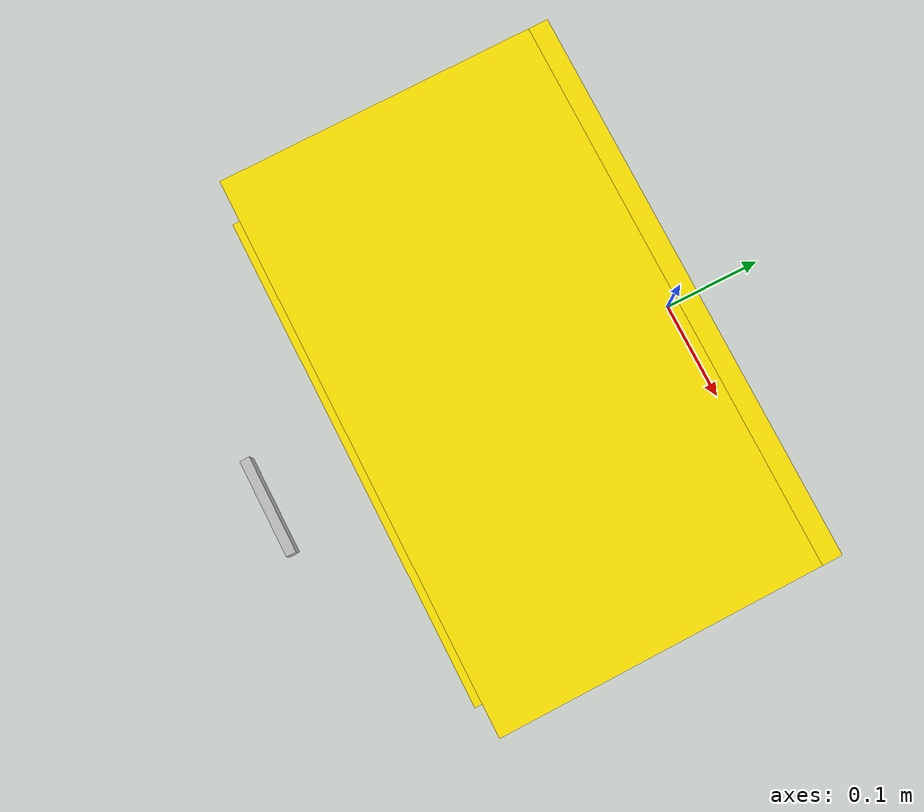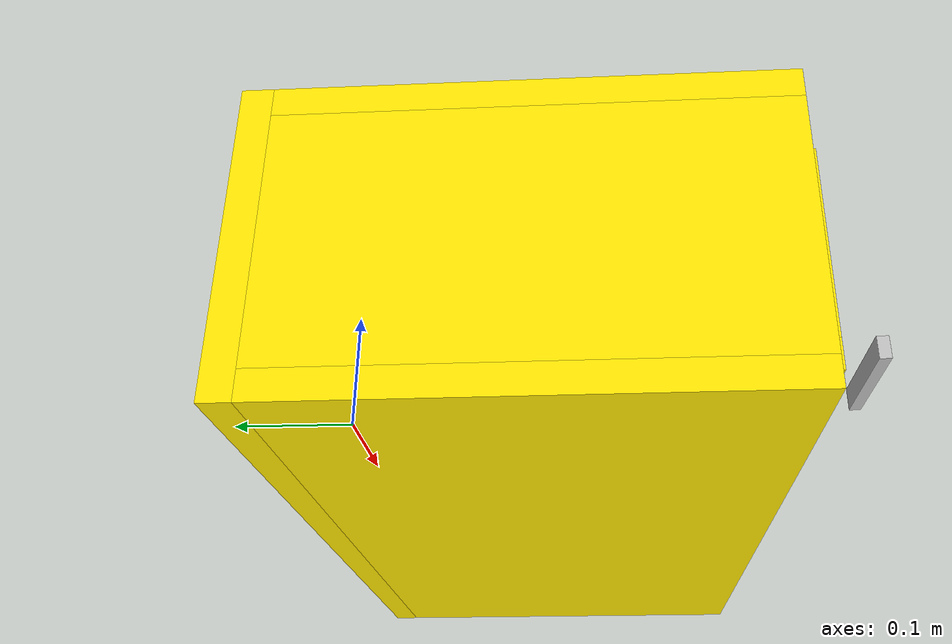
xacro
<?xml version="1.0"?>
<robot xmlns:xacro="http://www.ros.org/wiki/xacro" name="drawer">
    <xacro:property name="thickness" value="0.02"/>
    <xacro:property name="x_position" value="0"/>
    <xacro:property name="y_position" value="0"/>
    <xacro:property name="z_position" value="0"/>

    <xacro:include filename="$(find hyrobot)/urdf/objects_xacro/calc_inertial.xacro"/>

    <material name="yellow">
        <color rgba="1.0 0.9 0.0 1.0"/>
    </material>

    <xacro:macro name="open_cuboid" params="prefix length width height mass">
        <link name="${prefix}_drawer_base">
            <xacro:box_inertial m="${mass}" x="${length}" y="${width}" z="${thickness}"/>
            <visual>
                <origin xyz="0.0 0.0 0.0" rpy="0.0 0.0 0.0"/>
                <geometry>
                    <mesh filename="../../meshes/drawer/${prefix}_drawer_base_visual.obj" scale="1 1 1"/>
                </geometry>
                <material name="yellow"/>
            </visual>
            <collision>
                <origin xyz="0.0 0.0 0.0" rpy="0.0 0.0 0.0"/>
                <geometry>
                    <mesh filename="../../meshes/drawer/${prefix}_drawer_base_visual.obj" scale="1 1 1"/>
                </geometry>
                <surface>
                    <friction>
                        <ode>
                            <mu>0.5</mu>
                        </ode>
                    </friction>
                </surface>
            </collision>
        </link>

        <!--drawer_front-->
        <link name="${prefix}_drawer_front">
            <xacro:box_inertial m="${mass}" x="${thickness}" y="${width}" z="${height-thickness}"/>
            <visual>
                <origin xyz="0.0 0.0 0.0" rpy="0.0 0.0 0.0"/>
                <geometry>
                    <mesh filename="../../meshes/drawer/${prefix}_drawer_front_visual.obj" scale="1 1 1"/>
                </geometry>
                <material name="yellow"/>
            </visual>
            <collision>
                <origin xyz="0.0 0.0 0.0" rpy="0.0 0.0 0.0"/>
                <geometry>
                    <mesh filename="../../meshes/drawer/${prefix}_drawer_front_visual.obj" scale="1 1 1"/>
                </geometry>
            </collision>
        </link>
        <joint name="${prefix}_front2base" type="fixed">
            <origin xyz="${length/2 - thickness/2} ${height/2} 0.0" rpy="0.0 0.0 0.0"/>
            <parent link="${prefix}_drawer_base"/>
            <child link="${prefix}_drawer_front"/>
        </joint>
        <!--drawer_back-->
        <link name="${prefix}_drawer_back">
            <xacro:box_inertial m="${mass}" x="${thickness}" y="${width}" z="${height-thickness}"/>
            <visual>
                <origin xyz="0.0 0.0 0.0" rpy="0.0 0.0 0.0"/>
                <geometry>
                    <mesh filename="../../meshes/drawer/${prefix}_drawer_back_visual.obj" scale="1 1 1"/>
                </geometry>
                <material name="yellow"/>
            </visual>
            <collision>
                <origin xyz="0.0 0.0 0.0" rpy="0.0 0.0 0.0"/>
                <geometry>
                    <mesh filename="../../meshes/drawer/${prefix}_drawer_back_visual.obj" scale="1 1 1"/>
                </geometry>
            </collision>
        </link>
        <joint name="${prefix}_back2base" type="fixed">
            <origin xyz="${-length/2 + thickness/2} ${height/2} 0.0" rpy="0.0 0.0 0.0"/>
            <parent link="${prefix}_drawer_base"/>
            <child link="${prefix}_drawer_back"/>
        </joint>
        <!--drawer_left-->
        <link name="${prefix}_drawer_left">
            <xacro:box_inertial m="${mass}" x="${length - 2*thickness}" y="${thickness}" z="${height-thickness}"/>
            <visual>
                <origin xyz="0.0 0.0 0.0" rpy="0.0 0.0 0.0"/>
                <geometry>
                    <mesh filename="../../meshes/drawer/${prefix}_drawer_left_visual.obj" scale="1 1 1"/>
                </geometry>
                <material name="yellow"/>
            </visual>
            <collision>
                <origin xyz="0.0 0.0 0.0" rpy="0.0 0.0 0.0"/>
                <geometry>
                    <mesh filename="../../meshes/drawer/${prefix}_drawer_left_visual.obj" scale="1 1 1"/>
                </geometry>
            </collision>
        </link>

        <joint name="${prefix}_left2base" type="fixed">
            <origin xyz="0.0 ${height/2} ${-width/2 + thickness/2}" rpy="0.0 0.0 0.0"/>
            <parent link="${prefix}_drawer_base"/>
            <child link="${prefix}_drawer_left"/>
        </joint>

        <!--drawer_right-->
        <link name="${prefix}_drawer_right">
            <xacro:box_inertial m="${mass}" x="${length - 2*thickness}" y="${thickness}" z="${height-thickness}"/>
            <visual>
                <origin xyz="0.0 0.0 0.0" rpy="0.0 0.0 0.0"/>
                <geometry>
                    <mesh filename="../../meshes/drawer/${prefix}_drawer_right_visual.obj" scale="1 1 1"/>
                </geometry>
                <material name="yellow"/>
            </visual>
            <collision>
                <origin xyz="0.0 0.0 0.0" rpy="0.0 0.0 0.0"/>
                <geometry>
                    <mesh filename="../../meshes/drawer/${prefix}_drawer_right_visual.obj" scale="1 1 1"/>
                </geometry>
            </collision>
        </link>

        <joint name="${prefix}_right2base" type="fixed">
            <origin xyz="0.0 ${height/2} ${width/2 - thickness/2}" rpy="0.0 0.0 0.0"/>
            <parent link="${prefix}_drawer_base"/>
            <child link="${prefix}_drawer_right"/>
        </joint>
    </xacro:macro>

    <xacro:macro name="add_drawer" params="prefix drawer_height drawer_width drawer_length drawer_handle">
        <xacro:open_cuboid prefix="${prefix}_in" length="${drawer_length}" width="${drawer_width}" height="${drawer_height}" mass="1"/>
        <xacro:open_cuboid prefix="${prefix}_out" length="${drawer_height + thickness * 3}" width="${drawer_width + thickness * 3}" height="${drawer_length + thickness * 2}" mass="100"/>
        <joint name="${prefix}_in2out" type="prismatic">
            <origin xyz="${drawer_height/2 - thickness/4} ${drawer_length/2+thickness*2} 0.0" rpy="0.0 0.0 ${pi/2}"/>
            <parent link="${prefix}_out_drawer_base"/>
            <child link="${prefix}_in_drawer_base"/>
            <axis xyz="1 0 0"/>
            <limit lower="0.0" upper="1.0" effort="0.0" velocity="0.0"/>
            <dynamics damping = "10.0"/>
        </joint>

        <link name="${prefix}_handle">
            <visual>
                <geometry>
                <box size="0.01 0.1 0.02"/>
                </geometry>
                <origin xyz="0 0 0" rpy="0 0 0"/>
                <material name="silver">
                <color rgba="0.75 0.75 0.75 1.0"/>
                </material>
            </visual>
            <collision>
                <geometry>
                <box size="0.01 0.1 0.02"/>
                </geometry>
                <origin xyz="0 0 0" rpy="0 0 0"/>
            </collision>
            <xacro:box_inertial m="0.5" x="0.01" y="0.1" z="0.02"/>
        </link>

        <!-- 把手与抽屉前板的连接 -->
        <joint name="${prefix}_handle_joint" type="fixed">
            <parent link="${prefix}_in_drawer_front"/>
            <child link="${prefix}_handle"/>
            <origin xyz="0.1 0.03 0" rpy="${pi/2} 0 0"/>
        </joint>

    </xacro:macro>

    <xacro:add_drawer prefix="drawer1" drawer_length="0.3" drawer_width="0.5" drawer_height="0.15" drawer_handle="0.04"/>
    <link name="virtual__drawer_link"/>
    <joint name="drawer12world" type="fixed">
        <origin xyz="0.0 0.0 0.0" rpy="0.0 ${pi/2} ${pi}"/>
        <parent link="virtual__drawer_link"/>
        <child link="drawer1_out_drawer_base"/>
        <axis xyz="0.0 0.0 0.0"/>
        <limit lower="0.0" upper="0.0" effort="0.0" velocity="0.0"/>
    </joint>
</robot>
